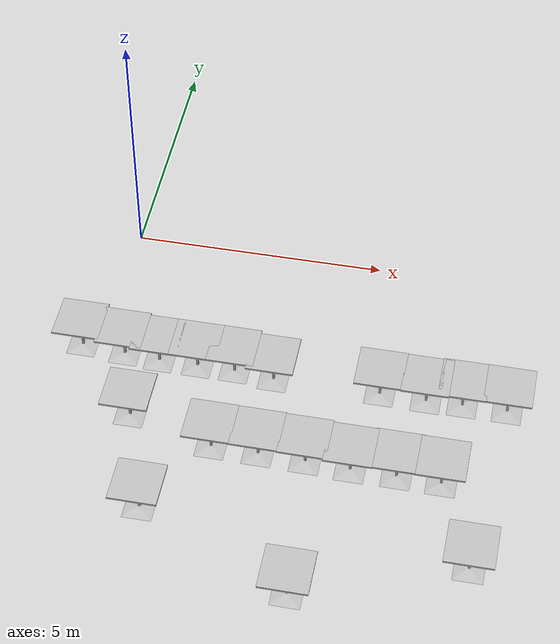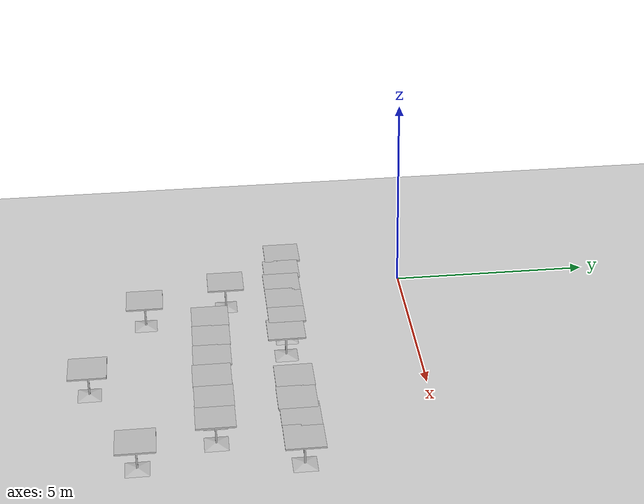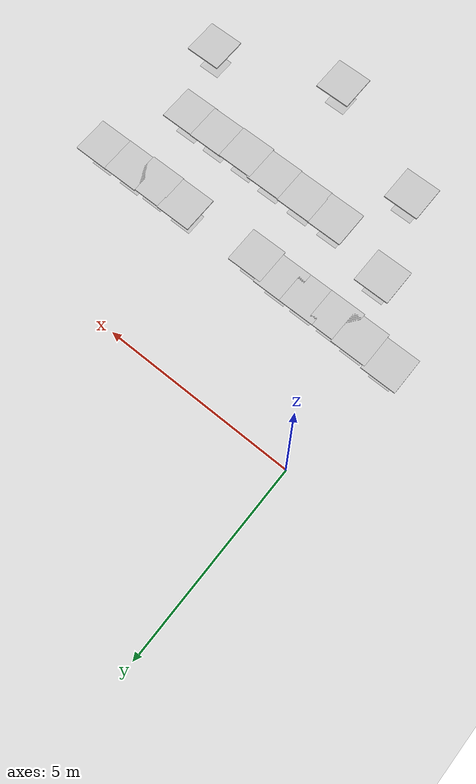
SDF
<sdf version="1.7">
 <world name="default">
  <light name="sun" type="directional">
   <pose>0 0 10 0 -0 0</pose>
   <diffuse>0.8 0.8 0.8 1</diffuse>
   <specular>0.2 0.2 0.2 1</specular>
   <attenuation>
    <range>1000</range>
    <constant>0.9</constant>
    <linear>0.01</linear>
    <quadratic>0.001</quadratic>
   </attenuation>
   <direction>-0.5 0.1 -0.9</direction>
   <spot><inner_angle>0</inner_angle><outer_angle>0</outer_angle><falloff>0</falloff></spot>
  </light>
  <model name="ground_plane">
   <static>1</static>
   <link name="link">
    <collision name="collision">
     <geometry><plane><normal>0 0 1</normal><size>100 100</size></plane></geometry>
     <surface><friction><ode><mu>100</mu><mu2>50</mu2></ode></friction></surface>
    </collision>
    <visual name="visual">
     <cast_shadows>0</cast_shadows>
     <geometry><plane><normal>0 0 1</normal><size>100 100</size></plane></geometry>
     <material>
      <script><uri>file://media/materials/scripts/gazebo.material</uri><name>Gazebo/Grey</name></script>
     </material>
    </visual>
   </link>
  </model>
  <gravity>0 0 -9.8</gravity>
  <magnetic_field>6e-06 2.3e-05 -4.2e-05</magnetic_field>
  <atmosphere type="adiabatic"/>
  <physics type="ode">
   <max_step_size>0.001</max_step_size>
   <real_time_factor>1</real_time_factor>
   <real_time_update_rate>1000</real_time_update_rate>
  </physics>
  <scene><ambient>0.4 0.4 0.4 1</ambient><background>0.7 0.7 0.7 1</background><shadows>1</shadows></scene>
  <audio><device>default</device></audio>
  <spherical_coordinates>
   <surface_model>EARTH_WGS84</surface_model>
   <latitude_deg>0</latitude_deg>
   <longitude_deg>0</longitude_deg>
   <elevation>0</elevation>
   <heading_deg>0</heading_deg>
  </spherical_coordinates>
  <model name="cafe_table">
   <static>1</static>
   <link name="link">
    <collision name="surface">
     <pose>0 0 0.755 0 -0 0</pose>
     <geometry><box><size>0.913 0.913 0.04</size></box></geometry>
    </collision>
    <collision name="column">
     <pose>0 0 0.37 0 -0 0</pose>
     <geometry><box><size>0.042 0.042 0.74</size></box></geometry>
    </collision>
    <collision name="base">
     <pose>0 0 0.02 0 -0 0</pose>
     <geometry><box><size>0.56 0.56 0.04</size></box></geometry>
    </collision>
    <visual name="visual">
     <geometry><mesh><uri>model://cafe_table/meshes/cafe_table.dae</uri></mesh></geometry>
    </visual>
   </link>
   <pose>-0.396717 -3.07429 0 0 -0 0</pose>
  </model>
  <model name="cafe_table_clone">
   <static>1</static>
   <link name="link">
    <collision name="surface">
     <pose>0 0 0.755 0 -0 0</pose>
     <geometry><box><size>0.913 0.913 0.04</size></box></geometry>
    </collision>
    <collision name="column">
     <pose>0 0 0.37 0 -0 0</pose>
     <geometry><box><size>0.042 0.042 0.74</size></box></geometry>
    </collision>
    <collision name="base">
     <pose>0 0 0.02 0 -0 0</pose>
     <geometry><box><size>0.56 0.56 0.04</size></box></geometry>
    </collision>
    <visual name="visual">
     <geometry><mesh><uri>model://cafe_table/meshes/cafe_table.dae</uri></mesh></geometry>
    </visual>
   </link>
   <pose>0.46475 -3.15005 0 0 -0 0</pose>
  </model>
  <model name="cafe_table_clone_0">
   <static>1</static>
   <link name="link">
    <collision name="surface">
     <pose>0 0 0.755 0 -0 0</pose>
     <geometry><box><size>0.913 0.913 0.04</size></box></geometry>
    </collision>
    <collision name="column">
     <pose>0 0 0.37 0 -0 0</pose>
     <geometry><box><size>0.042 0.042 0.74</size></box></geometry>
    </collision>
    <collision name="base">
     <pose>0 0 0.02 0 -0 0</pose>
     <geometry><box><size>0.56 0.56 0.04</size></box></geometry>
    </collision>
    <visual name="visual">
     <geometry><mesh><uri>model://cafe_table/meshes/cafe_table.dae</uri></mesh></geometry>
    </visual>
   </link>
   <pose>1.16671 -3.19265 0 0 -0 0</pose>
  </model>
  <model name="cafe_table_clone_1">
   <static>1</static>
   <link name="link">
    <collision name="surface">
     <pose>0 0 0.755 0 -0 0</pose>
     <geometry><box><size>0.913 0.913 0.04</size></box></geometry>
    </collision>
    <collision name="column">
     <pose>0 0 0.37 0 -0 0</pose>
     <geometry><box><size>0.042 0.042 0.74</size></box></geometry>
    </collision>
    <collision name="base">
     <pose>0 0 0.02 0 -0 0</pose>
     <geometry><box><size>0.56 0.56 0.04</size></box></geometry>
    </collision>
    <visual name="visual">
     <geometry><mesh><uri>model://cafe_table/meshes/cafe_table.dae</uri></mesh></geometry>
    </visual>
   </link>
   <pose>1.92567 -3.18997 0 0 -0 0</pose>
  </model>
  <model name="cafe_table_clone_2">
   <static>1</static>
   <link name="link">
    <collision name="surface">
     <pose>0 0 0.755 0 -0 0</pose>
     <geometry><box><size>0.913 0.913 0.04</size></box></geometry>
    </collision>
    <collision name="column">
     <pose>0 0 0.37 0 -0 0</pose>
     <geometry><box><size>0.042 0.042 0.74</size></box></geometry>
    </collision>
    <collision name="base">
     <pose>0 0 0.02 0 -0 0</pose>
     <geometry><box><size>0.56 0.56 0.04</size></box></geometry>
    </collision>
    <visual name="visual">
     <geometry><mesh><uri>model://cafe_table/meshes/cafe_table.dae</uri></mesh></geometry>
    </visual>
   </link>
   <pose>2.65871 -3.18964 0 0 -0 0</pose>
  </model>
  <model name="cafe_table_clone_3">
   <static>1</static>
   <link name="link">
    <collision name="surface">
     <pose>0 0 0.755 0 -0 0</pose>
     <geometry><box><size>0.913 0.913 0.04</size></box></geometry>
    </collision>
    <collision name="column">
     <pose>0 0 0.37 0 -0 0</pose>
     <geometry><box><size>0.042 0.042 0.74</size></box></geometry>
    </collision>
    <collision name="base">
     <pose>0 0 0.02 0 -0 0</pose>
     <geometry><box><size>0.56 0.56 0.04</size></box></geometry>
    </collision>
    <visual name="visual">
     <geometry><mesh><uri>model://cafe_table/meshes/cafe_table.dae</uri></mesh></geometry>
    </visual>
   </link>
   <pose>3.43732 -3.26091 0 0 -0 0</pose>
  </model>
  <model name="cafe_table_clone_4">
   <static>1</static>
   <link name="link">
    <collision name="surface">
     <pose>0 0 0.755 0 -0 0</pose>
     <geometry><box><size>0.913 0.913 0.04</size></box></geometry>
    </collision>
    <collision name="column">
     <pose>0 0 0.37 0 -0 0</pose>
     <geometry><box><size>0.042 0.042 0.74</size></box></geometry>
    </collision>
    <collision name="base">
     <pose>0 0 0.02 0 -0 0</pose>
     <geometry><box><size>0.56 0.56 0.04</size></box></geometry>
    </collision>
    <visual name="visual">
     <geometry><mesh><uri>model://cafe_table/meshes/cafe_table.dae</uri></mesh></geometry>
    </visual>
   </link>
   <pose>7.95412 -3.21551 0 0 -0 0</pose>
  </model>
  <model name="cafe_table_clone_5">
   <static>1</static>
   <link name="link">
    <collision name="surface">
     <pose>0 0 0.755 0 -0 0</pose>
     <geometry><box><size>0.913 0.913 0.04</size></box></geometry>
    </collision>
    <collision name="column">
     <pose>0 0 0.37 0 -0 0</pose>
     <geometry><box><size>0.042 0.042 0.74</size></box></geometry>
    </collision>
    <collision name="base">
     <pose>0 0 0.02 0 -0 0</pose>
     <geometry><box><size>0.56 0.56 0.04</size></box></geometry>
    </collision>
    <visual name="visual">
     <geometry><mesh><uri>model://cafe_table/meshes/cafe_table.dae</uri></mesh></geometry>
    </visual>
   </link>
   <pose>7.09854 -3.22073 0 0 -0 0</pose>
  </model>
  <model name="cafe_table_clone_6">
   <static>1</static>
   <link name="link">
    <collision name="surface">
     <pose>0 0 0.755 0 -0 0</pose>
     <geometry><box><size>0.913 0.913 0.04</size></box></geometry>
    </collision>
    <collision name="column">
     <pose>0 0 0.37 0 -0 0</pose>
     <geometry><box><size>0.042 0.042 0.74</size></box></geometry>
    </collision>
    <collision name="base">
     <pose>0 0 0.02 0 -0 0</pose>
     <geometry><box><size>0.56 0.56 0.04</size></box></geometry>
    </collision>
    <visual name="visual">
     <geometry><mesh><uri>model://cafe_table/meshes/cafe_table.dae</uri></mesh></geometry>
    </visual>
   </link>
   <pose>6.40183 -3.24522 0 0 -0 0</pose>
  </model>
  <model name="cafe_table_clone_7">
   <static>1</static>
   <link name="link">
    <collision name="surface">
     <pose>0 0 0.755 0 -0 0</pose>
     <geometry><box><size>0.913 0.913 0.04</size></box></geometry>
    </collision>
    <collision name="column">
     <pose>0 0 0.37 0 -0 0</pose>
     <geometry><box><size>0.042 0.042 0.74</size></box></geometry>
    </collision>
    <collision name="base">
     <pose>0 0 0.02 0 -0 0</pose>
     <geometry><box><size>0.56 0.56 0.04</size></box></geometry>
    </collision>
    <visual name="visual">
     <geometry><mesh><uri>model://cafe_table/meshes/cafe_table.dae</uri></mesh></geometry>
    </visual>
   </link>
   <pose>5.5082 -3.23183 0 0 -0 0</pose>
  </model>
  <model name="cafe_table_clone_8">
   <static>1</static>
   <link name="link">
    <collision name="surface">
     <pose>0 0 0.755 0 -0 0</pose>
     <geometry><box><size>0.913 0.913 0.04</size></box></geometry>
    </collision>
    <collision name="column">
     <pose>0 0 0.37 0 -0 0</pose>
     <geometry><box><size>0.042 0.042 0.74</size></box></geometry>
    </collision>
    <collision name="base">
     <pose>0 0 0.02 0 -0 0</pose>
     <geometry><box><size>0.56 0.56 0.04</size></box></geometry>
    </collision>
    <visual name="visual">
     <geometry><mesh><uri>model://cafe_table/meshes/cafe_table.dae</uri></mesh></geometry>
    </visual>
   </link>
   <pose>4.40344 -5.10585 0 0 -0 0</pose>
  </model>
  <model name="cafe_table_clone_9">
   <static>1</static>
   <link name="link">
    <collision name="surface">
     <pose>0 0 0.755 0 -0 0</pose>
     <geometry><box><size>0.913 0.913 0.04</size></box></geometry>
    </collision>
    <collision name="column">
     <pose>0 0 0.37 0 -0 0</pose>
     <geometry><box><size>0.042 0.042 0.74</size></box></geometry>
    </collision>
    <collision name="base">
     <pose>0 0 0.02 0 -0 0</pose>
     <geometry><box><size>0.56 0.56 0.04</size></box></geometry>
    </collision>
    <visual name="visual">
     <geometry><mesh><uri>model://cafe_table/meshes/cafe_table.dae</uri></mesh></geometry>
    </visual>
   </link>
   <pose>5.25566 -5.14196 0 0 -0 0</pose>
  </model>
  <model name="cafe_table_clone_10">
   <static>1</static>
   <link name="link">
    <collision name="surface">
     <pose>0 0 0.755 0 -0 0</pose>
     <geometry><box><size>0.913 0.913 0.04</size></box></geometry>
    </collision>
    <collision name="column">
     <pose>0 0 0.37 0 -0 0</pose>
     <geometry><box><size>0.042 0.042 0.74</size></box></geometry>
    </collision>
    <collision name="base">
     <pose>0 0 0.02 0 -0 0</pose>
     <geometry><box><size>0.56 0.56 0.04</size></box></geometry>
    </collision>
    <visual name="visual">
     <geometry><mesh><uri>model://cafe_table/meshes/cafe_table.dae</uri></mesh></geometry>
    </visual>
   </link>
   <pose>6.11963 -5.13049 0 0 -0 0</pose>
  </model>
  <model name="cafe_table_clone_11">
   <static>1</static>
   <link name="link">
    <collision name="surface">
     <pose>0 0 0.755 0 -0 0</pose>
     <geometry><box><size>0.913 0.913 0.04</size></box></geometry>
    </collision>
    <collision name="column">
     <pose>0 0 0.37 0 -0 0</pose>
     <geometry><box><size>0.042 0.042 0.74</size></box></geometry>
    </collision>
    <collision name="base">
     <pose>0 0 0.02 0 -0 0</pose>
     <geometry><box><size>0.56 0.56 0.04</size></box></geometry>
    </collision>
    <visual name="visual">
     <geometry><mesh><uri>model://cafe_table/meshes/cafe_table.dae</uri></mesh></geometry>
    </visual>
   </link>
   <pose>6.95568 -5.13837 0 0 -0 0</pose>
  </model>
  <model name="cafe_table_clone_12">
   <static>1</static>
   <link name="link">
    <collision name="surface">
     <pose>0 0 0.755 0 -0 0</pose>
     <geometry><box><size>0.913 0.913 0.04</size></box></geometry>
    </collision>
    <collision name="column">
     <pose>0 0 0.37 0 -0 0</pose>
     <geometry><box><size>0.042 0.042 0.74</size></box></geometry>
    </collision>
    <collision name="base">
     <pose>0 0 0.02 0 -0 0</pose>
     <geometry><box><size>0.56 0.56 0.04</size></box></geometry>
    </collision>
    <visual name="visual">
     <geometry><mesh><uri>model://cafe_table/meshes/cafe_table.dae</uri></mesh></geometry>
    </visual>
   </link>
   <pose>3.50656 -5.09101 0 0 -0 0</pose>
  </model>
  <model name="cafe_table_clone_13">
   <static>1</static>
   <link name="link">
    <collision name="surface">
     <pose>0 0 0.755 0 -0 0</pose>
     <geometry><box><size>0.913 0.913 0.04</size></box></geometry>
    </collision>
    <collision name="column">
     <pose>0 0 0.37 0 -0 0</pose>
     <geometry><box><size>0.042 0.042 0.74</size></box></geometry>
    </collision>
    <collision name="base">
     <pose>0 0 0.02 0 -0 0</pose>
     <geometry><box><size>0.56 0.56 0.04</size></box></geometry>
    </collision>
    <visual name="visual">
     <geometry><mesh><uri>model://cafe_table/meshes/cafe_table.dae</uri></mesh></geometry>
    </visual>
   </link>
   <pose>2.61012 -5.08261 0 0 -0 0</pose>
  </model>
  <model name="cafe_table_clone_14">
   <static>1</static>
   <link name="link">
    <collision name="surface">
     <pose>0 0 0.755 0 -0 0</pose>
     <geometry><box><size>0.913 0.913 0.04</size></box></geometry>
    </collision>
    <collision name="column">
     <pose>0 0 0.37 0 -0 0</pose>
     <geometry><box><size>0.042 0.042 0.74</size></box></geometry>
    </collision>
    <collision name="base">
     <pose>0 0 0.02 0 -0 0</pose>
     <geometry><box><size>0.56 0.56 0.04</size></box></geometry>
    </collision>
    <visual name="visual">
     <geometry><mesh><uri>model://cafe_table/meshes/cafe_table.dae</uri></mesh></geometry>
    </visual>
   </link>
   <pose>0.941733 -4.62432 0 0 -0 0</pose>
  </model>
  <model name="cafe_table_clone_15">
   <static>1</static>
   <link name="link">
    <collision name="surface">
     <pose>0 0 0.755 0 -0 0</pose>
     <geometry><box><size>0.913 0.913 0.04</size></box></geometry>
    </collision>
    <collision name="column">
     <pose>0 0 0.37 0 -0 0</pose>
     <geometry><box><size>0.042 0.042 0.74</size></box></geometry>
    </collision>
    <collision name="base">
     <pose>0 0 0.02 0 -0 0</pose>
     <geometry><box><size>0.56 0.56 0.04</size></box></geometry>
    </collision>
    <visual name="visual">
     <geometry><mesh><uri>model://cafe_table/meshes/cafe_table.dae</uri></mesh></geometry>
    </visual>
   </link>
   <pose>1.63315 -6.68928 0 0 -0 0</pose>
  </model>
  <model name="cafe_table_clone_16">
   <static>1</static>
   <link name="link">
    <collision name="surface">
     <pose>0 0 0.755 0 -0 0</pose>
     <geometry><box><size>0.913 0.913 0.04</size></box></geometry>
    </collision>
    <collision name="column">
     <pose>0 0 0.37 0 -0 0</pose>
     <geometry><box><size>0.042 0.042 0.74</size></box></geometry>
    </collision>
    <collision name="base">
     <pose>0 0 0.02 0 -0 0</pose>
     <geometry><box><size>0.56 0.56 0.04</size></box></geometry>
    </collision>
    <visual name="visual">
     <geometry><mesh><uri>model://cafe_table/meshes/cafe_table.dae</uri></mesh></geometry>
    </visual>
   </link>
   <pose>7.69529 -6.91826 0 0 -0 0</pose>
  </model>
  <model name="cafe_table_clone_17">
   <static>1</static>
   <link name="link">
    <collision name="surface">
     <pose>0 0 0.755 0 -0 0</pose>
     <geometry><box><size>0.913 0.913 0.04</size></box></geometry>
    </collision>
    <collision name="column">
     <pose>0 0 0.37 0 -0 0</pose>
     <geometry><box><size>0.042 0.042 0.74</size></box></geometry>
    </collision>
    <collision name="base">
     <pose>0 0 0.02 0 -0 0</pose>
     <geometry><box><size>0.56 0.56 0.04</size></box></geometry>
    </collision>
    <visual name="visual">
     <geometry><mesh><uri>model://cafe_table/meshes/cafe_table.dae</uri></mesh></geometry>
    </visual>
   </link>
   <pose>4.62865 -8.03812 0 0 -0 0</pose>
  </model>
 </world>
</sdf>
